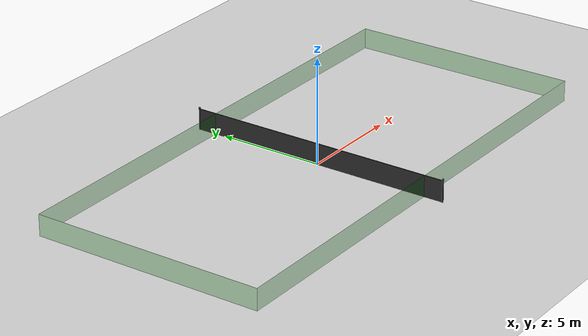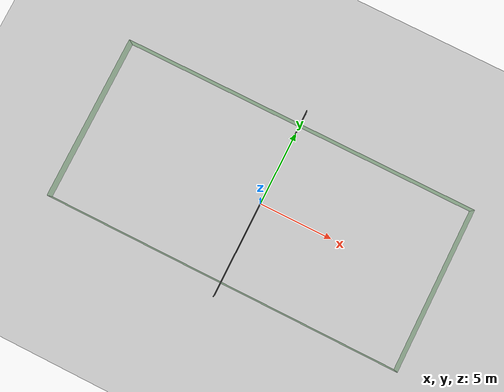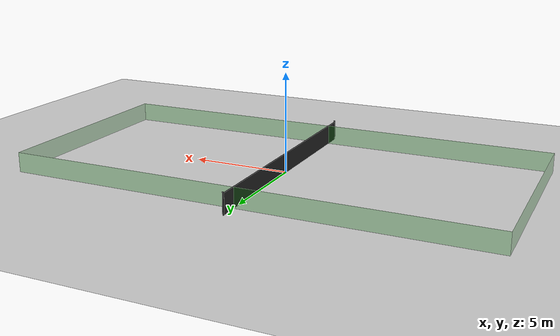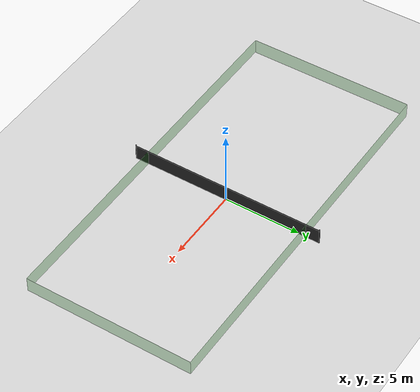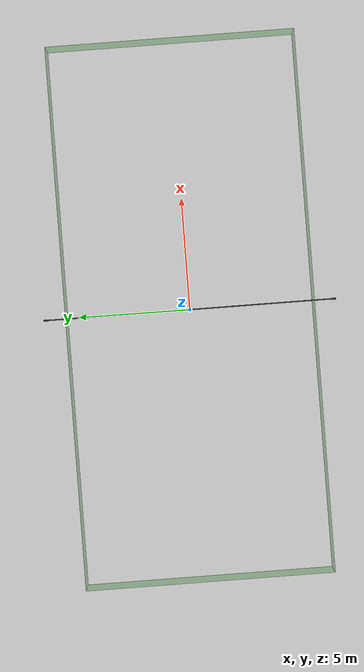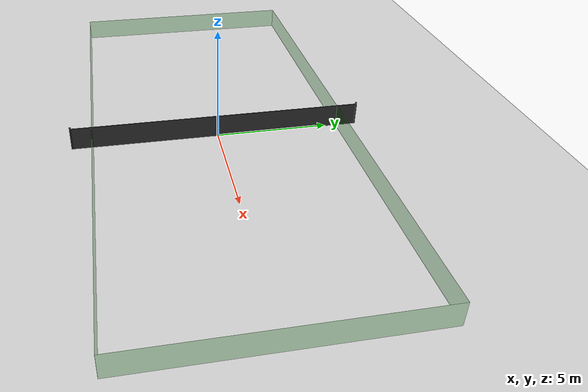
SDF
<sdf version="1.6">
 <world name="half_court_lines_world">
  <include><uri>model://sun</uri></include>
  <model name="ground_plane">
   <static>true</static>
   <link name="link">
    <collision name="collision">
     <geometry><plane><normal>0 0 1</normal><size>100 100</size></plane></geometry>
     <surface>
      <contact><collide_bitmask>0xffff</collide_bitmask></contact>
      <friction><ode><mu>0.63</mu><mu2>0.63</mu2></ode></friction>
     </surface>
    </collision>
    <visual name="visual">
     <cast_shadows>false</cast_shadows>
     <geometry><plane><normal>0 0 1</normal><size>100 100</size></plane></geometry>
     <material>
      <script><uri>file://media/materials/scripts/gazebo.material</uri><name>Gazebo/Grey</name></script>
     </material>
    </visual>
   </link>
  </model>
  <model name="court_walls">
   <static>true</static>
   <link name="walls_link">
    <visual name="front_v">
     <pose>12 0 0.5 0 0 0</pose>
     <geometry><box><size>0.005 11 1</size></box></geometry>
     <material><ambient>0 0.5 0 0.3</ambient><diffuse>0 0.5 0 0.3</diffuse></material>
    </visual>
    <visual name="back_v">
     <pose>-12 0 0.5 0 0 0</pose>
     <geometry><box><size>0.005 11 1</size></box></geometry>
     <material><ambient>0 0.5 0 0.3</ambient><diffuse>0 0.5 0 0.3</diffuse></material>
    </visual>
    <visual name="left_v">
     <pose>0 5.5 0.5 0 0 0</pose>
     <geometry><box><size>24 0.005 1</size></box></geometry>
     <material><ambient>0 0.5 0 0.3</ambient><diffuse>0 0.5 0 0.3</diffuse></material>
    </visual>
    <visual name="right_v">
     <pose>0 -5.5 0.5 0 0 0</pose>
     <geometry><box><size>24 0.005 1</size></box></geometry>
     <material><ambient>0 0.5 0 0.3</ambient><diffuse>0 0.5 0 0.3</diffuse></material>
    </visual>
   </link>
  </model>
  <model name="tennis_net">
   <static>true</static>
   <link name="net_link">
    <collision name="net_c">
     <pose>0 0 0.5 0 0 0</pose>
     <geometry><box><size>0.05 12.8 1.0</size></box></geometry>
    </collision>
    <visual name="net_v">
     <pose>0 0 0.5 0 0 0</pose>
     <geometry><box><size>0.05 12.8 1.0</size></box></geometry>
     <material><ambient>0.15 0.15 0.15 1</ambient><diffuse>0.2 0.2 0.2 1</diffuse></material>
    </visual>
    <collision name="post_l_c">
     <pose>0 6.4 0.535 0 0 0</pose>
     <geometry><cylinder><radius>0.04</radius><length>1.07</length></cylinder></geometry>
    </collision>
    <visual name="post_l_v">
     <pose>0 6.4 0.535 0 0 0</pose>
     <geometry><cylinder><radius>0.04</radius><length>1.07</length></cylinder></geometry>
     <material><ambient>0.1 0.1 0.1 1</ambient><diffuse>0.1 0.1 0.1 1</diffuse></material>
    </visual>
    <collision name="post_r_c">
     <pose>0 -6.4 0.535 0 0 0</pose>
     <geometry><cylinder><radius>0.04</radius><length>1.07</length></cylinder></geometry>
    </collision>
    <visual name="post_r_v">
     <pose>0 -6.4 0.535 0 0 0</pose>
     <geometry><cylinder><radius>0.04</radius><length>1.07</length></cylinder></geometry>
     <material><ambient>0.1 0.1 0.1 1</ambient><diffuse>0.1 0.1 0.1 1</diffuse></material>
    </visual>
   </link>
  </model>
 </world>
</sdf>
